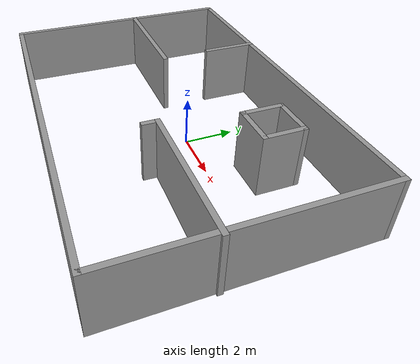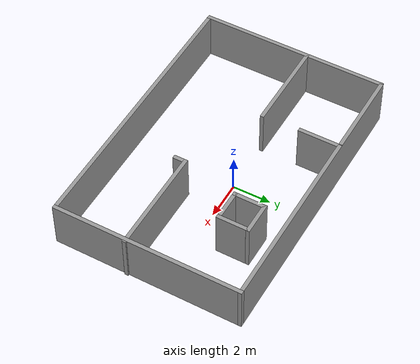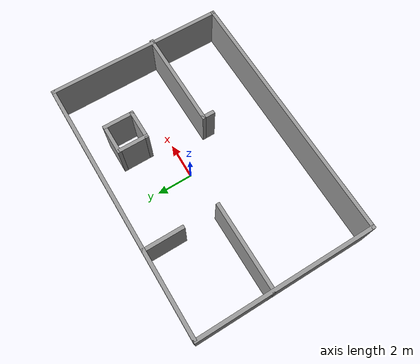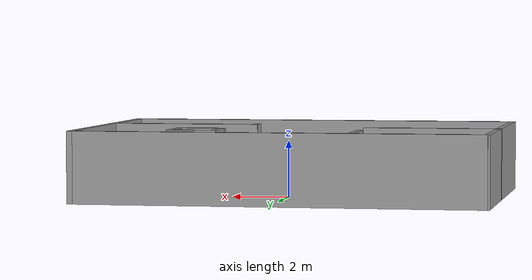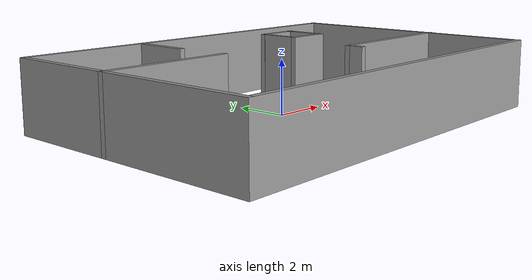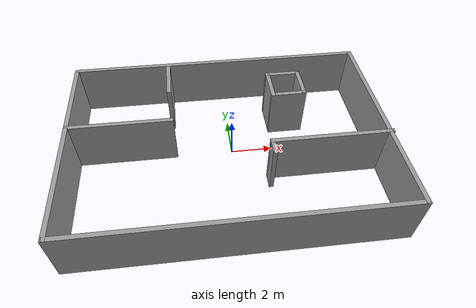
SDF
<?xml version='1.0'?>
<sdf version='1.4'>
  <model name='sim_simple'>
    <link name='Wall_41'>
      <collision name='Wall_41_Collision'>
        <geometry>
          <box>
            <size>9.85587 0.2 2.5</size>
          </box>
        </geometry>
        <pose>0 0 1.25 0 -0 0</pose>
      </collision>
      <visual name='Wall_41_Visual'>
        <pose>0 0 1.25 0 -0 0</pose>
        <geometry>
          <box>
            <size>9.85587 0.2 2.5</size>
          </box>
        </geometry>
        <material>
          <script>
            <uri>file://media/materials/scripts/gazebo.material</uri>
            <name>Gazebo/Grey</name>
          </script>
        </material>
      </visual>
      <velocity_decay>
        <linear>0</linear>
        <angular>0</angular>
      </velocity_decay>
      <pose>-7.43595 -0.704231 0 0 0 -1.5708</pose>
    </link>
    <link name='Wall_42'>
      <collision name='Wall_42_Collision'>
        <geometry>
          <box>
            <size>14.4577 0.2 2.5</size>
          </box>
        </geometry>
        <pose>0 0 1.25 0 -0 0</pose>
      </collision>
      <visual name='Wall_42_Visual'>
        <pose>0 0 1.25 0 -0 0</pose>
        <geometry>
          <box>
            <size>14.4577 0.2 2.5</size>
          </box>
        </geometry>
        <material>
          <script>
            <uri>file://media/materials/scripts/gazebo.material</uri>
            <name>Gazebo/Grey</name>
          </script>
        </material>
      </visual>
      <velocity_decay>
        <linear>0</linear>
        <angular>0</angular>
      </velocity_decay>
      <pose>-0.3071 -5.53217 0 0 -0 0</pose>
    </link>
    <link name='Wall_43'>
      <collision name='Wall_43_Collision'>
        <geometry>
          <box>
            <size>9.88247 0.2 2.5</size>
          </box>
        </geometry>
        <pose>0 0 1.25 0 -0 0</pose>
      </collision>
      <visual name='Wall_43_Visual'>
        <pose>0 0 1.25 0 -0 0</pose>
        <geometry>
          <box>
            <size>9.88247 0.2 2.5</size>
          </box>
        </geometry>
        <material>
          <script>
            <uri>file://media/materials/scripts/gazebo.material</uri>
            <name>Gazebo/Grey</name>
          </script>
        </material>
      </visual>
      <velocity_decay>
        <linear>0</linear>
        <angular>0</angular>
      </velocity_decay>
      <pose>6.82175 -0.690931 0 0 -0 1.5708</pose>
    </link>
    <link name='Wall_44'>
      <collision name='Wall_44_Collision'>
        <geometry>
          <box>
            <size>14.3779 0.2 2.5</size>
          </box>
        </geometry>
        <pose>0 0 1.25 0 -0 0</pose>
      </collision>
      <visual name='Wall_44_Visual'>
        <pose>0 0 1.25 0 -0 0</pose>
        <geometry>
          <box>
            <size>14.3779 0.2 2.5</size>
          </box>
        </geometry>
        <material>
          <script>
            <uri>file://media/materials/scripts/gazebo.material</uri>
            <name>Gazebo/Grey</name>
          </script>
        </material>
      </visual>
      <velocity_decay>
        <linear>0</linear>
        <angular>0</angular>
      </velocity_decay>
      <pose>-0.2672 4.15031 0 0 -0 3.14159</pose>
    </link>
    <link name='Wall_46'>
      <collision name='Wall_46_Collision'>
        <geometry>
          <box>
            <size>2.27482 0.2 2.5</size>
          </box>
        </geometry>
        <pose>0 0 1.25 0 -0 0</pose>
      </collision>
      <visual name='Wall_46_Visual'>
        <pose>0 0 1.25 0 -0 0</pose>
        <geometry>
          <box>
            <size>2.27482 0.2 2.5</size>
          </box>
        </geometry>
        <material>
          <script>
            <uri>file://media/materials/scripts/gazebo.material</uri>
            <name>Gazebo/Grey</name>
          </script>
        </material>
      </visual>
      <velocity_decay>
        <linear>0</linear>
        <angular>0</angular>
      </velocity_decay>
      <pose>-2.83412 3.1129 0 0 0 -1.5708</pose>
    </link>
    <link name='Wall_48'>
      <collision name='Wall_48_Collision'>
        <geometry>
          <box>
            <size>4.85503 0.2 2.5</size>
          </box>
        </geometry>
        <pose>0 0 1.25 0 -0 0</pose>
      </collision>
      <visual name='Wall_48_Visual'>
        <pose>0 0 1.25 0 -0 0</pose>
        <geometry>
          <box>
            <size>4.85503 0.2 2.5</size>
          </box>
        </geometry>
        <material>
          <script>
            <uri>file://media/materials/scripts/gazebo.material</uri>
            <name>Gazebo/Grey</name>
          </script>
        </material>
      </visual>
      <velocity_decay>
        <linear>0</linear>
        <angular>0</angular>
      </velocity_decay>
      <pose>-5.10844 0.053874 0 0 -0 0</pose>
    </link>
    <link name='Wall_50'>
      <collision name='Wall_50_Collision'>
        <geometry>
          <box>
            <size>1.66301 0.2 2.5</size>
          </box>
        </geometry>
        <pose>0 0 1.25 0 -0 0</pose>
      </collision>
      <visual name='Wall_50_Visual'>
        <pose>0 0 1.25 0 -0 0</pose>
        <geometry>
          <box>
            <size>1.66301 0.2 2.5</size>
          </box>
        </geometry>
        <material>
          <script>
            <uri>file://media/materials/scripts/gazebo.material</uri>
            <name>Gazebo/Grey</name>
          </script>
        </material>
      </visual>
      <velocity_decay>
        <linear>0</linear>
        <angular>0</angular>
      </velocity_decay>
      <pose>2.14012 1.98239 0 0 0 -1.5708</pose>
    </link>
    <link name='Wall_51'>
      <collision name='Wall_51_Collision'>
        <geometry>
          <box>
            <size>1.71621 0.2 2.5</size>
          </box>
        </geometry>
        <pose>0 0 1.25 0 -0 0</pose>
      </collision>
      <visual name='Wall_51_Visual'>
        <pose>0 0 1.25 0 -0 0</pose>
        <geometry>
          <box>
            <size>1.71621 0.2 2.5</size>
          </box>
        </geometry>
        <material>
          <script>
            <uri>file://media/materials/scripts/gazebo.material</uri>
            <name>Gazebo/Grey</name>
          </script>
        </material>
      </visual>
      <velocity_decay>
        <linear>0</linear>
        <angular>0</angular>
      </velocity_decay>
      <pose>2.89822 1.25088 0 0 -0 0</pose>
    </link>
    <link name='Wall_52'>
      <collision name='Wall_52_Collision'>
        <geometry>
          <box>
            <size>1.74281 0.2 2.5</size>
          </box>
        </geometry>
        <pose>0 0 1.25 0 -0 0</pose>
      </collision>
      <visual name='Wall_52_Visual'>
        <pose>0 0 1.25 0 -0 0</pose>
        <geometry>
          <box>
            <size>1.74281 0.2 2.5</size>
          </box>
        </geometry>
        <material>
          <script>
            <uri>file://media/materials/scripts/gazebo.material</uri>
            <name>Gazebo/Grey</name>
          </script>
        </material>
      </visual>
      <velocity_decay>
        <linear>0</linear>
        <angular>0</angular>
      </velocity_decay>
      <pose>3.65633 2.02229 0 0 -0 1.5708</pose>
    </link>
    <link name='Wall_53'>
      <collision name='Wall_53_Collision'>
        <geometry>
          <box>
            <size>1.72352 0.2 2.5</size>
          </box>
        </geometry>
        <pose>0 0 1.25 0 -0 0</pose>
      </collision>
      <visual name='Wall_53_Visual'>
        <pose>0 0 1.25 0 -0 0</pose>
        <geometry>
          <box>
            <size>1.72352 0.2 2.5</size>
          </box>
        </geometry>
        <material>
          <script>
            <uri>file://media/materials/scripts/gazebo.material</uri>
            <name>Gazebo/Grey</name>
          </script>
        </material>
      </visual>
      <velocity_decay>
        <linear>0</linear>
        <angular>0</angular>
      </velocity_decay>
      <pose>2.89457 2.7937 0 0 -0 3.14159</pose>
    </link>
    <link name='Wall_55'>
      <collision name='Wall_55_Collision'>
        <geometry>
          <box>
            <size>5.54014 0.2 2.5</size>
          </box>
        </geometry>
        <pose>0 0 1.25 0 -0 0</pose>
      </collision>
      <visual name='Wall_55_Visual'>
        <pose>0 0 1.25 0 -0 0</pose>
        <geometry>
          <box>
            <size>5.54014 0.2 2.5</size>
          </box>
        </geometry>
        <material>
          <script>
            <uri>file://media/materials/scripts/gazebo.material</uri>
            <name>Gazebo/Grey</name>
          </script>
        </material>
      </visual>
      <velocity_decay>
        <linear>0</linear>
        <angular>0</angular>
      </velocity_decay>
      <pose>4.22955 -1.73985 0 0 -0 3.14159</pose>
    </link>
    <link name='Wall_56'>
      <collision name='Wall_56_Collision'>
        <geometry>
          <box>
            <size>0.725923 0.2 2.5</size>
          </box>
        </geometry>
        <pose>0 0 1.25 0 -0 0</pose>
      </collision>
      <visual name='Wall_56_Visual'>
        <pose>0 0 1.25 0 -0 0</pose>
        <geometry>
          <box>
            <size>0.725923 0.2 2.5</size>
          </box>
        </geometry>
        <material>
          <script>
            <uri>file://media/materials/scripts/gazebo.material</uri>
            <name>Gazebo/Grey</name>
          </script>
        </material>
      </visual>
      <velocity_decay>
        <linear>0</linear>
        <angular>0</angular>
      </velocity_decay>
      <pose>1.55948 -2.00281 0 0 0 -1.5708</pose>
    </link>
    <static>1</static>
  </model>
</sdf>
